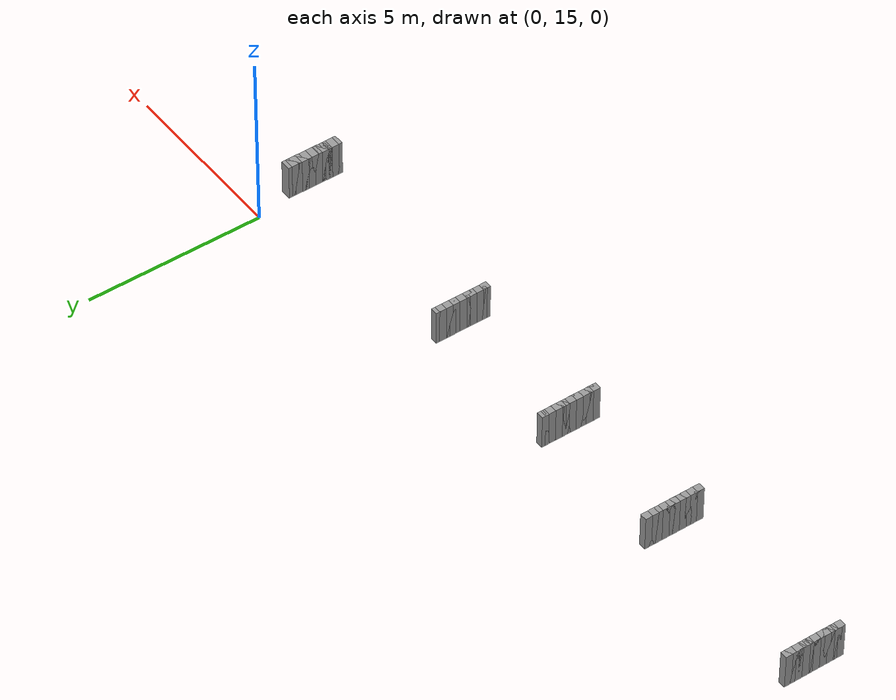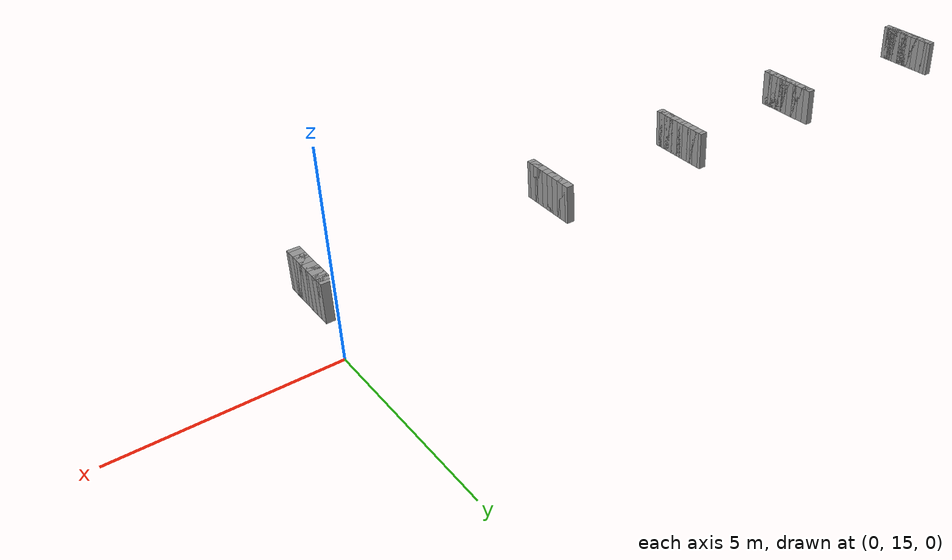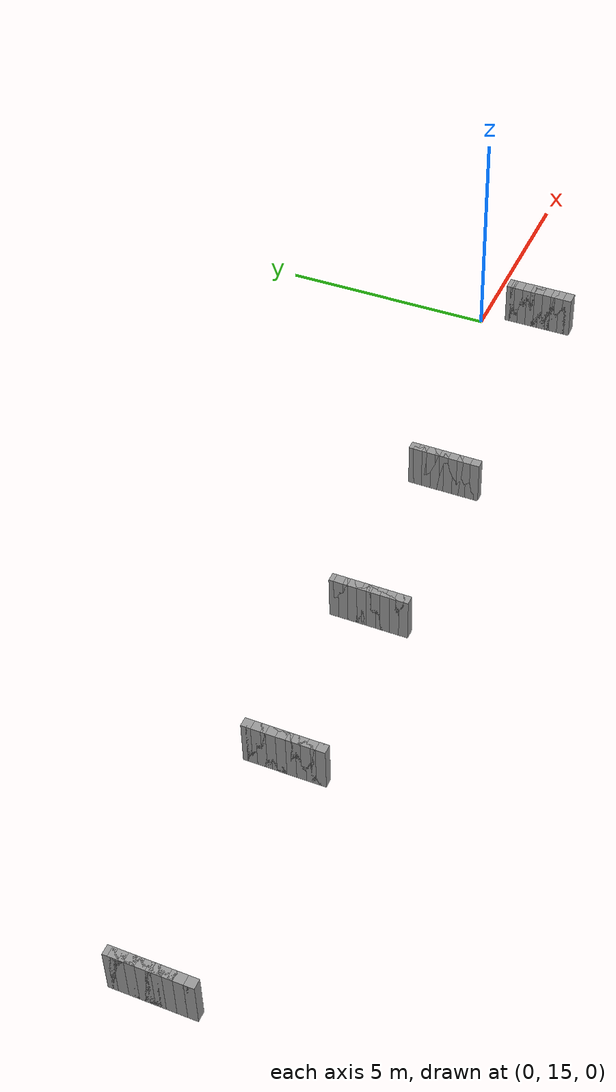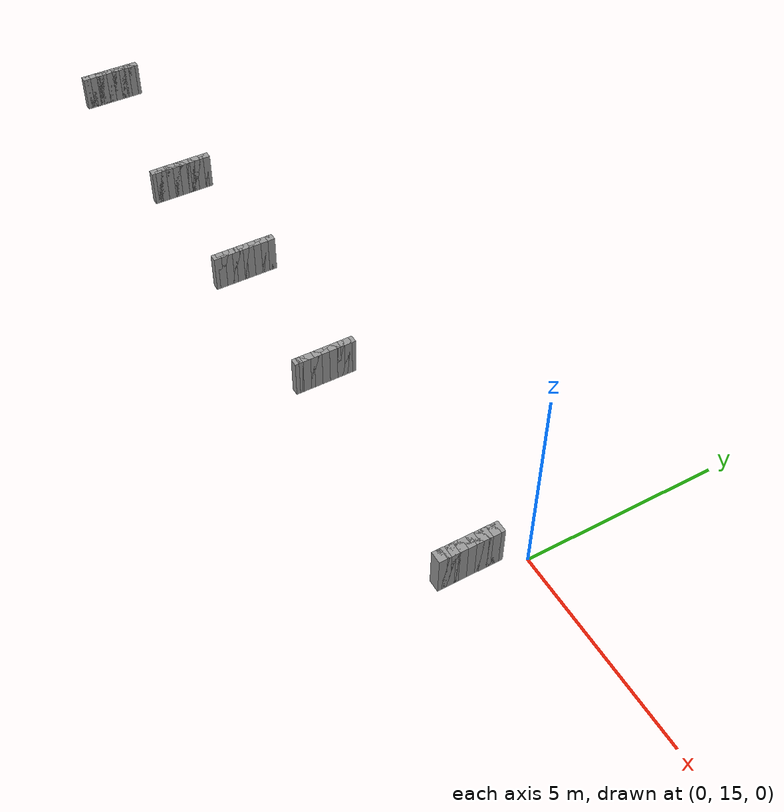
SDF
<sdf version="1.6">
 <world name="GridMap">
  <model name="GridMap">
   <link name="Wall_(106.5,127.0)">
    <collision name="Wall_(106.5,127.0)_Collision">
     <geometry><box><size>0.2 0.2 1.0</size></box></geometry>
     <pose>-10.65 12.7 0.5 0 -0 0</pose>
    </collision>
    <visual name="Wall_(106.5,127.0)_Visual">
     <geometry><box><size>0.2 0.2 1.0</size></box></geometry>
     <pose>-10.65 12.7 0.5 0 -0 0</pose>
     <material>
      <script><uri>file://media/materials/scripts/gazebo.material</uri><name>Gazebo/Grey</name></script>
      <ambient>1 1 1 1</ambient>
     </material>
     <meta><layer>0</layer></meta>
    </visual>
    <pose>0 0 0.5 0 -0 0</pose>
   </link>
   <link name="Wall_(146.5,127.0)">
    <collision name="Wall_(146.5,127.0)_Collision">
     <geometry><box><size>0.2 0.2 1.0</size></box></geometry>
     <pose>-14.65 12.7 0.5 0 -0 0</pose>
    </collision>
    <visual name="Wall_(146.5,127.0)_Visual">
     <geometry><box><size>0.2 0.2 1.0</size></box></geometry>
     <pose>-14.65 12.7 0.5 0 -0 0</pose>
     <material>
      <script><uri>file://media/materials/scripts/gazebo.material</uri><name>Gazebo/Grey</name></script>
      <ambient>1 1 1 1</ambient>
     </material>
     <meta><layer>0</layer></meta>
    </visual>
    <pose>0 0 0.5 0 -0 0</pose>
   </link>
   <link name="Wall_(198.5,127.0)">
    <collision name="Wall_(198.5,127.0)_Collision">
     <geometry><box><size>0.2 0.2 1.0</size></box></geometry>
     <pose>-19.85 12.7 0.5 0 -0 0</pose>
    </collision>
    <visual name="Wall_(198.5,127.0)_Visual">
     <geometry><box><size>0.2 0.2 1.0</size></box></geometry>
     <pose>-19.85 12.7 0.5 0 -0 0</pose>
     <material>
      <script><uri>file://media/materials/scripts/gazebo.material</uri><name>Gazebo/Grey</name></script>
      <ambient>1 1 1 1</ambient>
     </material>
     <meta><layer>0</layer></meta>
    </visual>
    <pose>0 0 0.5 0 -0 0</pose>
   </link>
   <link name="Wall_(1.5,128.0)">
    <collision name="Wall_(1.5,128.0)_Collision">
     <geometry><box><size>0.3 0.2 1.0</size></box></geometry>
     <pose>-0.15 12.8 0.5 0 -0 0</pose>
    </collision>
    <visual name="Wall_(1.5,128.0)_Visual">
     <geometry><box><size>0.3 0.2 1.0</size></box></geometry>
     <pose>-0.15 12.8 0.5 0 -0 0</pose>
     <material>
      <script><uri>file://media/materials/scripts/gazebo.material</uri><name>Gazebo/Grey</name></script>
      <ambient>1 1 1 1</ambient>
     </material>
     <meta><layer>0</layer></meta>
    </visual>
    <pose>0 0 0.5 0 -0 0</pose>
   </link>
   <link name="Wall_(64.0,128.0)">
    <collision name="Wall_(64.0,128.0)_Collision">
     <geometry><box><size>0.2 0.2 1.0</size></box></geometry>
     <pose>-6.4 12.8 0.5 0 -0 0</pose>
    </collision>
    <visual name="Wall_(64.0,128.0)_Visual">
     <geometry><box><size>0.2 0.2 1.0</size></box></geometry>
     <pose>-6.4 12.8 0.5 0 -0 0</pose>
     <material>
      <script><uri>file://media/materials/scripts/gazebo.material</uri><name>Gazebo/Grey</name></script>
      <ambient>1 1 1 1</ambient>
     </material>
     <meta><layer>0</layer></meta>
    </visual>
    <pose>0 0 0.5 0 -0 0</pose>
   </link>
   <link name="Wall_(106.5,128.0)">
    <collision name="Wall_(106.5,128.0)_Collision">
     <geometry><box><size>0.2 0.2 1.0</size></box></geometry>
     <pose>-10.65 12.8 0.5 0 -0 0</pose>
    </collision>
    <visual name="Wall_(106.5,128.0)_Visual">
     <geometry><box><size>0.2 0.2 1.0</size></box></geometry>
     <pose>-10.65 12.8 0.5 0 -0 0</pose>
     <material>
      <script><uri>file://media/materials/scripts/gazebo.material</uri><name>Gazebo/Grey</name></script>
      <ambient>1 1 1 1</ambient>
     </material>
     <meta><layer>0</layer></meta>
    </visual>
    <pose>0 0 0.5 0 -0 0</pose>
   </link>
   <link name="Wall_(146.5,128.0)">
    <collision name="Wall_(146.5,128.0)_Collision">
     <geometry><box><size>0.2 0.2 1.0</size></box></geometry>
     <pose>-14.65 12.8 0.5 0 -0 0</pose>
    </collision>
    <visual name="Wall_(146.5,128.0)_Visual">
     <geometry><box><size>0.2 0.2 1.0</size></box></geometry>
     <pose>-14.65 12.8 0.5 0 -0 0</pose>
     <material>
      <script><uri>file://media/materials/scripts/gazebo.material</uri><name>Gazebo/Grey</name></script>
      <ambient>1 1 1 1</ambient>
     </material>
     <meta><layer>0</layer></meta>
    </visual>
    <pose>0 0 0.5 0 -0 0</pose>
   </link>
   <link name="Wall_(198.5,128.0)">
    <collision name="Wall_(198.5,128.0)_Collision">
     <geometry><box><size>0.2 0.2 1.0</size></box></geometry>
     <pose>-19.85 12.8 0.5 0 -0 0</pose>
    </collision>
    <visual name="Wall_(198.5,128.0)_Visual">
     <geometry><box><size>0.2 0.2 1.0</size></box></geometry>
     <pose>-19.85 12.8 0.5 0 -0 0</pose>
     <material>
      <script><uri>file://media/materials/scripts/gazebo.material</uri><name>Gazebo/Grey</name></script>
      <ambient>1 1 1 1</ambient>
     </material>
     <meta><layer>0</layer></meta>
    </visual>
    <pose>0 0 0.5 0 -0 0</pose>
   </link>
   <link name="Wall_(1.5,129.0)">
    <collision name="Wall_(1.5,129.0)_Collision">
     <geometry><box><size>0.3 0.2 1.0</size></box></geometry>
     <pose>-0.15 12.9 0.5 0 -0 0</pose>
    </collision>
    <visual name="Wall_(1.5,129.0)_Visual">
     <geometry><box><size>0.3 0.2 1.0</size></box></geometry>
     <pose>-0.15 12.9 0.5 0 -0 0</pose>
     <material>
      <script><uri>file://media/materials/scripts/gazebo.material</uri><name>Gazebo/Grey</name></script>
      <ambient>1 1 1 1</ambient>
     </material>
     <meta><layer>0</layer></meta>
    </visual>
    <pose>0 0 0.5 0 -0 0</pose>
   </link>
   <link name="Wall_(64.0,129.0)">
    <collision name="Wall_(64.0,129.0)_Collision">
     <geometry><box><size>0.2 0.2 1.0</size></box></geometry>
     <pose>-6.4 12.9 0.5 0 -0 0</pose>
    </collision>
    <visual name="Wall_(64.0,129.0)_Visual">
     <geometry><box><size>0.2 0.2 1.0</size></box></geometry>
     <pose>-6.4 12.9 0.5 0 -0 0</pose>
     <material>
      <script><uri>file://media/materials/scripts/gazebo.material</uri><name>Gazebo/Grey</name></script>
      <ambient>1 1 1 1</ambient>
     </material>
     <meta><layer>0</layer></meta>
    </visual>
    <pose>0 0 0.5 0 -0 0</pose>
   </link>
   <link name="Wall_(106.5,129.0)">
    <collision name="Wall_(106.5,129.0)_Collision">
     <geometry><box><size>0.2 0.2 1.0</size></box></geometry>
     <pose>-10.65 12.9 0.5 0 -0 0</pose>
    </collision>
    <visual name="Wall_(106.5,129.0)_Visual">
     <geometry><box><size>0.2 0.2 1.0</size></box></geometry>
     <pose>-10.65 12.9 0.5 0 -0 0</pose>
     <material>
      <script><uri>file://media/materials/scripts/gazebo.material</uri><name>Gazebo/Grey</name></script>
      <ambient>1 1 1 1</ambient>
     </material>
     <meta><layer>0</layer></meta>
    </visual>
    <pose>0 0 0.5 0 -0 0</pose>
   </link>
   <link name="Wall_(146.5,129.0)">
    <collision name="Wall_(146.5,129.0)_Collision">
     <geometry><box><size>0.2 0.2 1.0</size></box></geometry>
     <pose>-14.65 12.9 0.5 0 -0 0</pose>
    </collision>
    <visual name="Wall_(146.5,129.0)_Visual">
     <geometry><box><size>0.2 0.2 1.0</size></box></geometry>
     <pose>-14.65 12.9 0.5 0 -0 0</pose>
     <material>
      <script><uri>file://media/materials/scripts/gazebo.material</uri><name>Gazebo/Grey</name></script>
      <ambient>1 1 1 1</ambient>
     </material>
     <meta><layer>0</layer></meta>
    </visual>
    <pose>0 0 0.5 0 -0 0</pose>
   </link>
   <link name="Wall_(198.5,129.0)">
    <collision name="Wall_(198.5,129.0)_Collision">
     <geometry><box><size>0.2 0.2 1.0</size></box></geometry>
     <pose>-19.85 12.9 0.5 0 -0 0</pose>
    </collision>
    <visual name="Wall_(198.5,129.0)_Visual">
     <geometry><box><size>0.2 0.2 1.0</size></box></geometry>
     <pose>-19.85 12.9 0.5 0 -0 0</pose>
     <material>
      <script><uri>file://media/materials/scripts/gazebo.material</uri><name>Gazebo/Grey</name></script>
      <ambient>1 1 1 1</ambient>
     </material>
     <meta><layer>0</layer></meta>
    </visual>
    <pose>0 0 0.5 0 -0 0</pose>
   </link>
   <link name="Wall_(1.5,130.0)">
    <collision name="Wall_(1.5,130.0)_Collision">
     <geometry><box><size>0.3 0.2 1.0</size></box></geometry>
     <pose>-0.15 13.0 0.5 0 -0 0</pose>
    </collision>
    <visual name="Wall_(1.5,130.0)_Visual">
     <geometry><box><size>0.3 0.2 1.0</size></box></geometry>
     <pose>-0.15 13.0 0.5 0 -0 0</pose>
     <material>
      <script><uri>file://media/materials/scripts/gazebo.material</uri><name>Gazebo/Grey</name></script>
      <ambient>1 1 1 1</ambient>
     </material>
     <meta><layer>0</layer></meta>
    </visual>
    <pose>0 0 0.5 0 -0 0</pose>
   </link>
   <link name="Wall_(64.0,130.0)">
    <collision name="Wall_(64.0,130.0)_Collision">
     <geometry><box><size>0.2 0.2 1.0</size></box></geometry>
     <pose>-6.4 13.0 0.5 0 -0 0</pose>
    </collision>
    <visual name="Wall_(64.0,130.0)_Visual">
     <geometry><box><size>0.2 0.2 1.0</size></box></geometry>
     <pose>-6.4 13.0 0.5 0 -0 0</pose>
     <material>
      <script><uri>file://media/materials/scripts/gazebo.material</uri><name>Gazebo/Grey</name></script>
      <ambient>1 1 1 1</ambient>
     </material>
     <meta><layer>0</layer></meta>
    </visual>
    <pose>0 0 0.5 0 -0 0</pose>
   </link>
   <link name="Wall_(106.5,130.0)">
    <collision name="Wall_(106.5,130.0)_Collision">
     <geometry><box><size>0.2 0.2 1.0</size></box></geometry>
     <pose>-10.65 13.0 0.5 0 -0 0</pose>
    </collision>
    <visual name="Wall_(106.5,130.0)_Visual">
     <geometry><box><size>0.2 0.2 1.0</size></box></geometry>
     <pose>-10.65 13.0 0.5 0 -0 0</pose>
     <material>
      <script><uri>file://media/materials/scripts/gazebo.material</uri><name>Gazebo/Grey</name></script>
      <ambient>1 1 1 1</ambient>
     </material>
     <meta><layer>0</layer></meta>
    </visual>
    <pose>0 0 0.5 0 -0 0</pose>
   </link>
   <link name="Wall_(146.5,130.0)">
    <collision name="Wall_(146.5,130.0)_Collision">
     <geometry><box><size>0.2 0.2 1.0</size></box></geometry>
     <pose>-14.65 13.0 0.5 0 -0 0</pose>
    </collision>
    <visual name="Wall_(146.5,130.0)_Visual">
     <geometry><box><size>0.2 0.2 1.0</size></box></geometry>
     <pose>-14.65 13.0 0.5 0 -0 0</pose>
     <material>
      <script><uri>file://media/materials/scripts/gazebo.material</uri><name>Gazebo/Grey</name></script>
      <ambient>1 1 1 1</ambient>
     </material>
     <meta><layer>0</layer></meta>
    </visual>
    <pose>0 0 0.5 0 -0 0</pose>
   </link>
   <link name="Wall_(198.5,130.0)">
    <collision name="Wall_(198.5,130.0)_Collision">
     <geometry><box><size>0.2 0.2 1.0</size></box></geometry>
     <pose>-19.85 13.0 0.5 0 -0 0</pose>
    </collision>
    <visual name="Wall_(198.5,130.0)_Visual">
     <geometry><box><size>0.2 0.2 1.0</size></box></geometry>
     <pose>-19.85 13.0 0.5 0 -0 0</pose>
     <material>
      <script><uri>file://media/materials/scripts/gazebo.material</uri><name>Gazebo/Grey</name></script>
      <ambient>1 1 1 1</ambient>
     </material>
     <meta><layer>0</layer></meta>
    </visual>
    <pose>0 0 0.5 0 -0 0</pose>
   </link>
   <link name="Wall_(1.5,131.0)">
    <collision name="Wall_(1.5,131.0)_Collision">
     <geometry><box><size>0.3 0.2 1.0</size></box></geometry>
     <pose>-0.15 13.1 0.5 0 -0 0</pose>
    </collision>
    <visual name="Wall_(1.5,131.0)_Visual">
     <geometry><box><size>0.3 0.2 1.0</size></box></geometry>
     <pose>-0.15 13.1 0.5 0 -0 0</pose>
     <material>
      <script><uri>file://media/materials/scripts/gazebo.material</uri><name>Gazebo/Grey</name></script>
      <ambient>1 1 1 1</ambient>
     </material>
     <meta><layer>0</layer></meta>
    </visual>
    <pose>0 0 0.5 0 -0 0</pose>
   </link>
   <link name="Wall_(64.0,131.0)">
    <collision name="Wall_(64.0,131.0)_Collision">
     <geometry><box><size>0.2 0.2 1.0</size></box></geometry>
     <pose>-6.4 13.1 0.5 0 -0 0</pose>
    </collision>
    <visual name="Wall_(64.0,131.0)_Visual">
     <geometry><box><size>0.2 0.2 1.0</size></box></geometry>
     <pose>-6.4 13.1 0.5 0 -0 0</pose>
     <material>
      <script><uri>file://media/materials/scripts/gazebo.material</uri><name>Gazebo/Grey</name></script>
      <ambient>1 1 1 1</ambient>
     </material>
     <meta><layer>0</layer></meta>
    </visual>
    <pose>0 0 0.5 0 -0 0</pose>
   </link>
   <link name="Wall_(106.5,131.0)">
    <collision name="Wall_(106.5,131.0)_Collision">
     <geometry><box><size>0.2 0.2 1.0</size></box></geometry>
     <pose>-10.65 13.1 0.5 0 -0 0</pose>
    </collision>
    <visual name="Wall_(106.5,131.0)_Visual">
     <geometry><box><size>0.2 0.2 1.0</size></box></geometry>
     <pose>-10.65 13.1 0.5 0 -0 0</pose>
     <material>
      <script><uri>file://media/materials/scripts/gazebo.material</uri><name>Gazebo/Grey</name></script>
      <ambient>1 1 1 1</ambient>
     </material>
     <meta><layer>0</layer></meta>
    </visual>
    <pose>0 0 0.5 0 -0 0</pose>
   </link>
   <link name="Wall_(146.5,131.0)">
    <collision name="Wall_(146.5,131.0)_Collision">
     <geometry><box><size>0.2 0.2 1.0</size></box></geometry>
     <pose>-14.65 13.1 0.5 0 -0 0</pose>
    </collision>
    <visual name="Wall_(146.5,131.0)_Visual">
     <geometry><box><size>0.2 0.2 1.0</size></box></geometry>
     <pose>-14.65 13.1 0.5 0 -0 0</pose>
     <material>
      <script><uri>file://media/materials/scripts/gazebo.material</uri><name>Gazebo/Grey</name></script>
      <ambient>1 1 1 1</ambient>
     </material>
     <meta><layer>0</layer></meta>
    </visual>
    <pose>0 0 0.5 0 -0 0</pose>
   </link>
   <link name="Wall_(198.5,131.0)">
    <collision name="Wall_(198.5,131.0)_Collision">
     <geometry><box><size>0.2 0.2 1.0</size></box></geometry>
     <pose>-19.85 13.1 0.5 0 -0 0</pose>
    </collision>
    <visual name="Wall_(198.5,131.0)_Visual">
     <geometry><box><size>0.2 0.2 1.0</size></box></geometry>
     <pose>-19.85 13.1 0.5 0 -0 0</pose>
     <material>
      <script><uri>file://media/materials/scripts/gazebo.material</uri><name>Gazebo/Grey</name></script>
      <ambient>1 1 1 1</ambient>
     </material>
     <meta><layer>0</layer></meta>
    </visual>
    <pose>0 0 0.5 0 -0 0</pose>
   </link>
   <link name="Wall_(1.5,132.0)">
    <collision name="Wall_(1.5,132.0)_Collision">
     <geometry><box><size>0.3 0.2 1.0</size></box></geometry>
     <pose>-0.15 13.2 0.5 0 -0 0</pose>
    </collision>
    <visual name="Wall_(1.5,132.0)_Visual">
     <geometry><box><size>0.3 0.2 1.0</size></box></geometry>
     <pose>-0.15 13.2 0.5 0 -0 0</pose>
     <material>
      <script><uri>file://media/materials/scripts/gazebo.material</uri><name>Gazebo/Grey</name></script>
      <ambient>1 1 1 1</ambient>
     </material>
     <meta><layer>0</layer></meta>
    </visual>
    <pose>0 0 0.5 0 -0 0</pose>
   </link>
   <link name="Wall_(64.0,132.0)">
    <collision name="Wall_(64.0,132.0)_Collision">
     <geometry><box><size>0.2 0.2 1.0</size></box></geometry>
     <pose>-6.4 13.2 0.5 0 -0 0</pose>
    </collision>
    <visual name="Wall_(64.0,132.0)_Visual">
     <geometry><box><size>0.2 0.2 1.0</size></box></geometry>
     <pose>-6.4 13.2 0.5 0 -0 0</pose>
     <material>
      <script><uri>file://media/materials/scripts/gazebo.material</uri><name>Gazebo/Grey</name></script>
      <ambient>1 1 1 1</ambient>
     </material>
     <meta><layer>0</layer></meta>
    </visual>
    <pose>0 0 0.5 0 -0 0</pose>
   </link>
   <link name="Wall_(106.5,132.0)">
    <collision name="Wall_(106.5,132.0)_Collision">
     <geometry><box><size>0.2 0.2 1.0</size></box></geometry>
     <pose>-10.65 13.2 0.5 0 -0 0</pose>
    </collision>
    <visual name="Wall_(106.5,132.0)_Visual">
     <geometry><box><size>0.2 0.2 1.0</size></box></geometry>
     <pose>-10.65 13.2 0.5 0 -0 0</pose>
     <material>
      <script><uri>file://media/materials/scripts/gazebo.material</uri><name>Gazebo/Grey</name></script>
      <ambient>1 1 1 1</ambient>
     </material>
     <meta><layer>0</layer></meta>
    </visual>
    <pose>0 0 0.5 0 -0 0</pose>
   </link>
   <link name="Wall_(146.5,132.0)">
    <collision name="Wall_(146.5,132.0)_Collision">
     <geometry><box><size>0.2 0.2 1.0</size></box></geometry>
     <pose>-14.65 13.2 0.5 0 -0 0</pose>
    </collision>
    <visual name="Wall_(146.5,132.0)_Visual">
     <geometry><box><size>0.2 0.2 1.0</size></box></geometry>
     <pose>-14.65 13.2 0.5 0 -0 0</pose>
     <material>
      <script><uri>file://media/materials/scripts/gazebo.material</uri><name>Gazebo/Grey</name></script>
      <ambient>1 1 1 1</ambient>
     </material>
     <meta><layer>0</layer></meta>
    </visual>
    <pose>0 0 0.5 0 -0 0</pose>
   </link>
   <link name="Wall_(198.5,132.0)">
    <collision name="Wall_(198.5,132.0)_Collision">
     <geometry><box><size>0.2 0.2 1.0</size></box></geometry>
     <pose>-19.85 13.2 0.5 0 -0 0</pose>
    </collision>
    <visual name="Wall_(198.5,132.0)_Visual">
     <geometry><box><size>0.2 0.2 1.0</size></box></geometry>
     <pose>-19.85 13.2 0.5 0 -0 0</pose>
     <material>
      <script><uri>file://media/materials/scripts/gazebo.material</uri><name>Gazebo/Grey</name></script>
      <ambient>1 1 1 1</ambient>
     </material>
     <meta><layer>0</layer></meta>
    </visual>
    <pose>0 0 0.5 0 -0 0</pose>
   </link>
   <link name="Wall_(1.5,133.0)">
    <collision name="Wall_(1.5,133.0)_Collision">
     <geometry><box><size>0.3 0.2 1.0</size></box></geometry>
     <pose>-0.15 13.3 0.5 0 -0 0</pose>
    </collision>
    <visual name="Wall_(1.5,133.0)_Visual">
     <geometry><box><size>0.3 0.2 1.0</size></box></geometry>
     <pose>-0.15 13.3 0.5 0 -0 0</pose>
     <material>
      <script><uri>file://media/materials/scripts/gazebo.material</uri><name>Gazebo/Grey</name></script>
      <ambient>1 1 1 1</ambient>
     </material>
     <meta><layer>0</layer></meta>
    </visual>
    <pose>0 0 0.5 0 -0 0</pose>
   </link>
   <link name="Wall_(64.0,133.0)">
    <collision name="Wall_(64.0,133.0)_Collision">
     <geometry><box><size>0.2 0.2 1.0</size></box></geometry>
     <pose>-6.4 13.3 0.5 0 -0 0</pose>
    </collision>
    <visual name="Wall_(64.0,133.0)_Visual">
     <geometry><box><size>0.2 0.2 1.0</size></box></geometry>
     <pose>-6.4 13.3 0.5 0 -0 0</pose>
     <material>
      <script><uri>file://media/materials/scripts/gazebo.material</uri><name>Gazebo/Grey</name></script>
      <ambient>1 1 1 1</ambient>
     </material>
     <meta><layer>0</layer></meta>
    </visual>
    <pose>0 0 0.5 0 -0 0</pose>
   </link>
   <link name="Wall_(106.5,133.0)">
    <collision name="Wall_(106.5,133.0)_Collision">
     <geometry><box><size>0.2 0.2 1.0</size></box></geometry>
     <pose>-10.65 13.3 0.5 0 -0 0</pose>
    </collision>
    <visual name="Wall_(106.5,133.0)_Visual">
     <geometry><box><size>0.2 0.2 1.0</size></box></geometry>
     <pose>-10.65 13.3 0.5 0 -0 0</pose>
     <material>
      <script><uri>file://media/materials/scripts/gazebo.material</uri><name>Gazebo/Grey</name></script>
      <ambient>1 1 1 1</ambient>
     </material>
     <meta><layer>0</layer></meta>
    </visual>
    <pose>0 0 0.5 0 -0 0</pose>
   </link>
   <link name="Wall_(146.5,133.0)">
    <collision name="Wall_(146.5,133.0)_Collision">
     <geometry><box><size>0.2 0.2 1.0</size></box></geometry>
     <pose>-14.65 13.3 0.5 0 -0 0</pose>
    </collision>
    <visual name="Wall_(146.5,133.0)_Visual">
     <geometry><box><size>0.2 0.2 1.0</size></box></geometry>
     <pose>-14.65 13.3 0.5 0 -0 0</pose>
     <material>
      <script><uri>file://media/materials/scripts/gazebo.material</uri><name>Gazebo/Grey</name></script>
      <ambient>1 1 1 1</ambient>
     </material>
     <meta><layer>0</layer></meta>
    </visual>
    <pose>0 0 0.5 0 -0 0</pose>
   </link>
   <link name="Wall_(198.5,133.0)">
    <collision name="Wall_(198.5,133.0)_Collision">
     <geometry><box><size>0.2 0.2 1.0</size></box></geometry>
     <pose>-19.85 13.3 0.5 0 -0 0</pose>
    </collision>
    <visual name="Wall_(198.5,133.0)_Visual">
     <geometry><box><size>0.2 0.2 1.0</size></box></geometry>
     <pose>-19.85 13.3 0.5 0 -0 0</pose>
     <material>
      <script><uri>file://media/materials/scripts/gazebo.material</uri><name>Gazebo/Grey</name></script>
      <ambient>1 1 1 1</ambient>
     </material>
     <meta><layer>0</layer></meta>
    </visual>
    <pose>0 0 0.5 0 -0 0</pose>
   </link>
   <link name="Wall_(1.5,134.0)">
    <collision name="Wall_(1.5,134.0)_Collision">
     <geometry><box><size>0.3 0.2 1.0</size></box></geometry>
     <pose>-0.15 13.4 0.5 0 -0 0</pose>
    </collision>
    <visual name="Wall_(1.5,134.0)_Visual">
     <geometry><box><size>0.3 0.2 1.0</size></box></geometry>
     <pose>-0.15 13.4 0.5 0 -0 0</pose>
     <material>
      <script><uri>file://media/materials/scripts/gazebo.material</uri><name>Gazebo/Grey</name></script>
      <ambient>1 1 1 1</ambient>
     </material>
     <meta><layer>0</layer></meta>
    </visual>
    <pose>0 0 0.5 0 -0 0</pose>
   </link>
   <link name="Wall_(64.0,134.0)">
    <collision name="Wall_(64.0,134.0)_Collision">
     <geometry><box><size>0.2 0.2 1.0</size></box></geometry>
     <pose>-6.4 13.4 0.5 0 -0 0</pose>
    </collision>
    <visual name="Wall_(64.0,134.0)_Visual">
     <geometry><box><size>0.2 0.2 1.0</size></box></geometry>
     <pose>-6.4 13.4 0.5 0 -0 0</pose>
     <material>
      <script><uri>file://media/materials/scripts/gazebo.material</uri><name>Gazebo/Grey</name></script>
      <ambient>1 1 1 1</ambient>
     </material>
     <meta><layer>0</layer></meta>
    </visual>
    <pose>0 0 0.5 0 -0 0</pose>
   </link>
   <link name="Wall_(106.5,134.0)">
    <collision name="Wall_(106.5,134.0)_Collision">
     <geometry><box><size>0.2 0.2 1.0</size></box></geometry>
     <pose>-10.65 13.4 0.5 0 -0 0</pose>
    </collision>
    <visual name="Wall_(106.5,134.0)_Visual">
     <geometry><box><size>0.2 0.2 1.0</size></box></geometry>
     <pose>-10.65 13.4 0.5 0 -0 0</pose>
     <material>
      <script><uri>file://media/materials/scripts/gazebo.material</uri><name>Gazebo/Grey</name></script>
      <ambient>1 1 1 1</ambient>
     </material>
     <meta><layer>0</layer></meta>
    </visual>
    <pose>0 0 0.5 0 -0 0</pose>
   </link>
   <link name="Wall_(146.5,134.0)">
    <collision name="Wall_(146.5,134.0)_Collision">
     <geometry><box><size>0.2 0.2 1.0</size></box></geometry>
     <pose>-14.65 13.4 0.5 0 -0 0</pose>
    </collision>
    <visual name="Wall_(146.5,134.0)_Visual">
     <geometry><box><size>0.2 0.2 1.0</size></box></geometry>
     <pose>-14.65 13.4 0.5 0 -0 0</pose>
     <material>
      <script><uri>file://media/materials/scripts/gazebo.material</uri><name>Gazebo/Grey</name></script>
      <ambient>1 1 1 1</ambient>
     </material>
     <meta><layer>0</layer></meta>
    </visual>
    <pose>0 0 0.5 0 -0 0</pose>
   </link>
   <link name="Wall_(198.5,134.0)">
    <collision name="Wall_(198.5,134.0)_Collision">
     <geometry><box><size>0.2 0.2 1.0</size></box></geometry>
     <pose>-19.85 13.4 0.5 0 -0 0</pose>
    </collision>
    <visual name="Wall_(198.5,134.0)_Visual">
     <geometry><box><size>0.2 0.2 1.0</size></box></geometry>
     <pose>-19.85 13.4 0.5 0 -0 0</pose>
     <material>
      <script><uri>file://media/materials/scripts/gazebo.material</uri><name>Gazebo/Grey</name></script>
      <ambient>1 1 1 1</ambient>
     </material>
     <meta><layer>0</layer></meta>
    </visual>
    <pose>0 0 0.5 0 -0 0</pose>
   </link>
   <link name="Wall_(1.5,135.0)">
    <collision name="Wall_(1.5,135.0)_Collision">
     <geometry><box><size>0.3 0.2 1.0</size></box></geometry>
     <pose>-0.15 13.5 0.5 0 -0 0</pose>
    </collision>
    <visual name="Wall_(1.5,135.0)_Visual">
     <geometry><box><size>0.3 0.2 1.0</size></box></geometry>
     <pose>-0.15 13.5 0.5 0 -0 0</pose>
     <material>
      <script><uri>file://media/materials/scripts/gazebo.material</uri><name>Gazebo/Grey</name></script>
      <ambient>1 1 1 1</ambient>
     </material>
     <meta><layer>0</layer></meta>
    </visual>
    <pose>0 0 0.5 0 -0 0</pose>
   </link>
   <link name="Wall_(64.0,135.0)">
    <collision name="Wall_(64.0,135.0)_Collision">
     <geometry><box><size>0.2 0.2 1.0</size></box></geometry>
     <pose>-6.4 13.5 0.5 0 -0 0</pose>
    </collision>
    <visual name="Wall_(64.0,135.0)_Visual">
     <geometry><box><size>0.2 0.2 1.0</size></box></geometry>
     <pose>-6.4 13.5 0.5 0 -0 0</pose>
     <material>
      <script><uri>file://media/materials/scripts/gazebo.material</uri><name>Gazebo/Grey</name></script>
      <ambient>1 1 1 1</ambient>
     </material>
     <meta><layer>0</layer></meta>
    </visual>
    <pose>0 0 0.5 0 -0 0</pose>
   </link>
   <link name="Wall_(106.5,135.0)">
    <collision name="Wall_(106.5,135.0)_Collision">
     <geometry><box><size>0.2 0.2 1.0</size></box></geometry>
     <pose>-10.65 13.5 0.5 0 -0 0</pose>
    </collision>
    <visual name="Wall_(106.5,135.0)_Visual">
     <geometry><box><size>0.2 0.2 1.0</size></box></geometry>
     <pose>-10.65 13.5 0.5 0 -0 0</pose>
     <material>
      <script><uri>file://media/materials/scripts/gazebo.material</uri><name>Gazebo/Grey</name></script>
      <ambient>1 1 1 1</ambient>
     </material>
     <meta><layer>0</layer></meta>
    </visual>
    <pose>0 0 0.5 0 -0 0</pose>
   </link>
   <link name="Wall_(146.5,135.0)">
    <collision name="Wall_(146.5,135.0)_Collision">
     <geometry><box><size>0.2 0.2 1.0</size></box></geometry>
     <pose>-14.65 13.5 0.5 0 -0 0</pose>
    </collision>
    <visual name="Wall_(146.5,135.0)_Visual">
     <geometry><box><size>0.2 0.2 1.0</size></box></geometry>
     <pose>-14.65 13.5 0.5 0 -0 0</pose>
     <material>
      <script><uri>file://media/materials/scripts/gazebo.material</uri><name>Gazebo/Grey</name></script>
      <ambient>1 1 1 1</ambient>
     </material>
     <meta><layer>0</layer></meta>
    </visual>
    <pose>0 0 0.5 0 -0 0</pose>
   </link>
   <link name="Wall_(198.5,135.0)">
    <collision name="Wall_(198.5,135.0)_Collision">
     <geometry><box><size>0.2 0.2 1.0</size></box></geometry>
     <pose>-19.85 13.5 0.5 0 -0 0</pose>
    </collision>
    <visual name="Wall_(198.5,135.0)_Visual">
     <geometry><box><size>0.2 0.2 1.0</size></box></geometry>
     <pose>-19.85 13.5 0.5 0 -0 0</pose>
     <material>
      <script><uri>file://media/materials/scripts/gazebo.material</uri><name>Gazebo/Grey</name></script>
      <ambient>1 1 1 1</ambient>
     </material>
     <meta><layer>0</layer></meta>
    </visual>
    <pose>0 0 0.5 0 -0 0</pose>
   </link>
   <link name="Wall_(1.5,136.0)">
    <collision name="Wall_(1.5,136.0)_Collision">
     <geometry><box><size>0.3 0.2 1.0</size></box></geometry>
     <pose>-0.15 13.6 0.5 0 -0 0</pose>
    </collision>
    <visual name="Wall_(1.5,136.0)_Visual">
     <geometry><box><size>0.3 0.2 1.0</size></box></geometry>
     <pose>-0.15 13.6 0.5 0 -0 0</pose>
     <material>
      <script><uri>file://media/materials/scripts/gazebo.material</uri><name>Gazebo/Grey</name></script>
      <ambient>1 1 1 1</ambient>
     </material>
     <meta><layer>0</layer></meta>
    </visual>
    <pose>0 0 0.5 0 -0 0</pose>
   </link>
   <link name="Wall_(64.0,136.0)">
    <collision name="Wall_(64.0,136.0)_Collision">
     <geometry><box><size>0.2 0.2 1.0</size></box></geometry>
     <pose>-6.4 13.6 0.5 0 -0 0</pose>
    </collision>
    <visual name="Wall_(64.0,136.0)_Visual">
     <geometry><box><size>0.2 0.2 1.0</size></box></geometry>
     <pose>-6.4 13.6 0.5 0 -0 0</pose>
     <material>
      <script><uri>file://media/materials/scripts/gazebo.material</uri><name>Gazebo/Grey</name></script>
      <ambient>1 1 1 1</ambient>
     </material>
     <meta><layer>0</layer></meta>
    </visual>
    <pose>0 0 0.5 0 -0 0</pose>
   </link>
   <link name="Wall_(106.5,136.0)">
    <collision name="Wall_(106.5,136.0)_Collision">
     <geometry><box><size>0.2 0.2 1.0</size></box></geometry>
     <pose>-10.65 13.6 0.5 0 -0 0</pose>
    </collision>
    <visual name="Wall_(106.5,136.0)_Visual">
     <geometry><box><size>0.2 0.2 1.0</size></box></geometry>
     <pose>-10.65 13.6 0.5 0 -0 0</pose>
     <material>
      <script><uri>file://media/materials/scripts/gazebo.material</uri><name>Gazebo/Grey</name></script>
      <ambient>1 1 1 1</ambient>
     </material>
     <meta><layer>0</layer></meta>
    </visual>
    <pose>0 0 0.5 0 -0 0</pose>
   </link>
   <link name="Wall_(146.5,136.0)">
    <collision name="Wall_(146.5,136.0)_Collision">
     <geometry><box><size>0.2 0.2 1.0</size></box></geometry>
     <pose>-14.65 13.6 0.5 0 -0 0</pose>
    </collision>
    <visual name="Wall_(146.5,136.0)_Visual">
     <geometry><box><size>0.2 0.2 1.0</size></box></geometry>
     <pose>-14.65 13.6 0.5 0 -0 0</pose>
     <material>
      <script><uri>file://media/materials/scripts/gazebo.material</uri><name>Gazebo/Grey</name></script>
      <ambient>1 1 1 1</ambient>
     </material>
     <meta><layer>0</layer></meta>
    </visual>
    <pose>0 0 0.5 0 -0 0</pose>
   </link>
   <link name="Wall_(198.5,136.0)">
    <collision name="Wall_(198.5,136.0)_Collision">
     <geometry><box><size>0.2 0.2 1.0</size></box></geometry>
     <pose>-19.85 13.6 0.5 0 -0 0</pose>
    </collision>
    <visual name="Wall_(198.5,136.0)_Visual">
     <geometry><box><size>0.2 0.2 1.0</size></box></geometry>
     <pose>-19.85 13.6 0.5 0 -0 0</pose>
     <material>
      <script><uri>file://media/materials/scripts/gazebo.material</uri><name>Gazebo/Grey</name></script>
      <ambient>1 1 1 1</ambient>
     </material>
     <meta><layer>0</layer></meta>
    </visual>
    <pose>0 0 0.5 0 -0 0</pose>
   </link>
   <link name="Wall_(1.5,137.0)">
    <collision name="Wall_(1.5,137.0)_Collision">
     <geometry><box><size>0.3 0.2 1.0</size></box></geometry>
     <pose>-0.15 13.7 0.5 0 -0 0</pose>
    </collision>
    <visual name="Wall_(1.5,137.0)_Visual">
     <geometry><box><size>0.3 0.2 1.0</size></box></geometry>
     <pose>-0.15 13.7 0.5 0 -0 0</pose>
     <material>
      <script><uri>file://media/materials/scripts/gazebo.material</uri><name>Gazebo/Grey</name></script>
      <ambient>1 1 1 1</ambient>
     </material>
     <meta><layer>0</layer></meta>
    </visual>
    <pose>0 0 0.5 0 -0 0</pose>
   </link>
   <link name="Wall_(64.0,137.0)">
    <collision name="Wall_(64.0,137.0)_Collision">
     <geometry><box><size>0.2 0.2 1.0</size></box></geometry>
     <pose>-6.4 13.7 0.5 0 -0 0</pose>
    </collision>
    <visual name="Wall_(64.0,137.0)_Visual">
     <geometry><box><size>0.2 0.2 1.0</size></box></geometry>
     <pose>-6.4 13.7 0.5 0 -0 0</pose>
     <material>
      <script><uri>file://media/materials/scripts/gazebo.material</uri><name>Gazebo/Grey</name></script>
      <ambient>1 1 1 1</ambient>
     </material>
     <meta><layer>0</layer></meta>
    </visual>
    <pose>0 0 0.5 0 -0 0</pose>
   </link>
   <link name="Wall_(106.5,137.0)">
    <collision name="Wall_(106.5,137.0)_Collision">
     <geometry><box><size>0.2 0.2 1.0</size></box></geometry>
     <pose>-10.65 13.7 0.5 0 -0 0</pose>
    </collision>
    <visual name="Wall_(106.5,137.0)_Visual">
     <geometry><box><size>0.2 0.2 1.0</size></box></geometry>
     <pose>-10.65 13.7 0.5 0 -0 0</pose>
     <material>
      <script><uri>file://media/materials/scripts/gazebo.material</uri><name>Gazebo/Grey</name></script>
      <ambient>1 1 1 1</ambient>
     </material>
     <meta><layer>0</layer></meta>
    </visual>
    <pose>0 0 0.5 0 -0 0</pose>
   </link>
   <link name="Wall_(146.5,137.0)">
    <collision name="Wall_(146.5,137.0)_Collision">
     <geometry><box><size>0.2 0.2 1.0</size></box></geometry>
     <pose>-14.65 13.7 0.5 0 -0 0</pose>
    </collision>
    <visual name="Wall_(146.5,137.0)_Visual">
     <geometry><box><size>0.2 0.2 1.0</size></box></geometry>
     <pose>-14.65 13.7 0.5 0 -0 0</pose>
     <material>
      <script><uri>file://media/materials/scripts/gazebo.material</uri><name>Gazebo/Grey</name></script>
      <ambient>1 1 1 1</ambient>
     </material>
     <meta><layer>0</layer></meta>
    </visual>
    <pose>0 0 0.5 0 -0 0</pose>
   </link>
   <link name="Wall_(198.5,137.0)">
    <collision name="Wall_(198.5,137.0)_Collision">
     <geometry><box><size>0.2 0.2 1.0</size></box></geometry>
     <pose>-19.85 13.7 0.5 0 -0 0</pose>
    </collision>
    <visual name="Wall_(198.5,137.0)_Visual">
     <geometry><box><size>0.2 0.2 1.0</size></box></geometry>
     <pose>-19.85 13.7 0.5 0 -0 0</pose>
     <material>
      <script><uri>file://media/materials/scripts/gazebo.material</uri><name>Gazebo/Grey</name></script>
      <ambient>1 1 1 1</ambient>
     </material>
     <meta><layer>0</layer></meta>
    </visual>
    <pose>0 0 0.5 0 -0 0</pose>
   </link>
   <link name="Wall_(1.5,138.0)">
    <collision name="Wall_(1.5,138.0)_Collision">
     <geometry><box><size>0.3 0.2 1.0</size></box></geometry>
     <pose>-0.15 13.8 0.5 0 -0 0</pose>
    </collision>
    <visual name="Wall_(1.5,138.0)_Visual">
     <geometry><box><size>0.3 0.2 1.0</size></box></geometry>
     <pose>-0.15 13.8 0.5 0 -0 0</pose>
     <material>
      <script><uri>file://media/materials/scripts/gazebo.material</uri><name>Gazebo/Grey</name></script>
      <ambient>1 1 1 1</ambient>
     </material>
     <meta><layer>0</layer></meta>
    </visual>
    <pose>0 0 0.5 0 -0 0</pose>
   </link>
   <link name="Wall_(64.0,138.0)">
    <collision name="Wall_(64.0,138.0)_Collision">
     <geometry><box><size>0.2 0.2 1.0</size></box></geometry>
     <pose>-6.4 13.8 0.5 0 -0 0</pose>
    </collision>
    <visual name="Wall_(64.0,138.0)_Visual">
     <geometry><box><size>0.2 0.2 1.0</size></box></geometry>
     <pose>-6.4 13.8 0.5 0 -0 0</pose>
     <material>
      <script><uri>file://media/materials/scripts/gazebo.material</uri><name>Gazebo/Grey</name></script>
      <ambient>1 1 1 1</ambient>
     </material>
     <meta><layer>0</layer></meta>
    </visual>
    <pose>0 0 0.5 0 -0 0</pose>
   </link>
   <link name="Wall_(106.5,138.0)">
    <collision name="Wall_(106.5,138.0)_Collision">
     <geometry><box><size>0.2 0.2 1.0</size></box></geometry>
     <pose>-10.65 13.8 0.5 0 -0 0</pose>
    </collision>
    <visual name="Wall_(106.5,138.0)_Visual">
     <geometry><box><size>0.2 0.2 1.0</size></box></geometry>
     <pose>-10.65 13.8 0.5 0 -0 0</pose>
     <material>
      <script><uri>file://media/materials/scripts/gazebo.material</uri><name>Gazebo/Grey</name></script>
      <ambient>1 1 1 1</ambient>
     </material>
     <meta><layer>0</layer></meta>
    </visual>
    <pose>0 0 0.5 0 -0 0</pose>
   </link>
   <link name="Wall_(146.5,138.0)">
    <collision name="Wall_(146.5,138.0)_Collision">
     <geometry><box><size>0.2 0.2 1.0</size></box></geometry>
     <pose>-14.65 13.8 0.5 0 -0 0</pose>
    </collision>
    <visual name="Wall_(146.5,138.0)_Visual">
     <geometry><box><size>0.2 0.2 1.0</size></box></geometry>
     <pose>-14.65 13.8 0.5 0 -0 0</pose>
     <material>
      <script><uri>file://media/materials/scripts/gazebo.material</uri><name>Gazebo/Grey</name></script>
      <ambient>1 1 1 1</ambient>
     </material>
     <meta><layer>0</layer></meta>
    </visual>
    <pose>0 0 0.5 0 -0 0</pose>
   </link>
   <link name="Wall_(198.5,138.0)">
    <collision name="Wall_(198.5,138.0)_Collision">
     <geometry><box><size>0.2 0.2 1.0</size></box></geometry>
     <pose>-19.85 13.8 0.5 0 -0 0</pose>
    </collision>
    <visual name="Wall_(198.5,138.0)_Visual">
     <geometry><box><size>0.2 0.2 1.0</size></box></geometry>
     <pose>-19.85 13.8 0.5 0 -0 0</pose>
     <material>
      <script><uri>file://media/materials/scripts/gazebo.material</uri><name>Gazebo/Grey</name></script>
      <ambient>1 1 1 1</ambient>
     </material>
     <meta><layer>0</layer></meta>
    </visual>
    <pose>0 0 0.5 0 -0 0</pose>
   </link>
   <link name="Wall_(1.5,139.0)">
    <collision name="Wall_(1.5,139.0)_Collision">
     <geometry><box><size>0.3 0.2 1.0</size></box></geometry>
     <pose>-0.15 13.9 0.5 0 -0 0</pose>
    </collision>
    <visual name="Wall_(1.5,139.0)_Visual">
     <geometry><box><size>0.3 0.2 1.0</size></box></geometry>
     <pose>-0.15 13.9 0.5 0 -0 0</pose>
     <material>
      <script><uri>file://media/materials/scripts/gazebo.material</uri><name>Gazebo/Grey</name></script>
      <ambient>1 1 1 1</ambient>
     </material>
     <meta><layer>0</layer></meta>
    </visual>
    <pose>0 0 0.5 0 -0 0</pose>
   </link>
   <link name="Wall_(64.0,139.0)">
    <collision name="Wall_(64.0,139.0)_Collision">
     <geometry><box><size>0.2 0.2 1.0</size></box></geometry>
     <pose>-6.4 13.9 0.5 0 -0 0</pose>
    </collision>
    <visual name="Wall_(64.0,139.0)_Visual">
     <geometry><box><size>0.2 0.2 1.0</size></box></geometry>
     <pose>-6.4 13.9 0.5 0 -0 0</pose>
     <material>
      <script><uri>file://media/materials/scripts/gazebo.material</uri><name>Gazebo/Grey</name></script>
      <ambient>1 1 1 1</ambient>
     </material>
     <meta><layer>0</layer></meta>
    </visual>
    <pose>0 0 0.5 0 -0 0</pose>
   </link>
   <link name="Wall_(106.5,139.0)">
    <collision name="Wall_(106.5,139.0)_Collision">
     <geometry><box><size>0.2 0.2 1.0</size></box></geometry>
     <pose>-10.65 13.9 0.5 0 -0 0</pose>
    </collision>
    <visual name="Wall_(106.5,139.0)_Visual">
     <geometry><box><size>0.2 0.2 1.0</size></box></geometry>
     <pose>-10.65 13.9 0.5 0 -0 0</pose>
     <material>
      <script><uri>file://media/materials/scripts/gazebo.material</uri><name>Gazebo/Grey</name></script>
      <ambient>1 1 1 1</ambient>
     </material>
     <meta><layer>0</layer></meta>
    </visual>
    <pose>0 0 0.5 0 -0 0</pose>
   </link>
   <link name="Wall_(146.5,139.0)">
    <collision name="Wall_(146.5,139.0)_Collision">
     <geometry><box><size>0.2 0.2 1.0</size></box></geometry>
     <pose>-14.65 13.9 0.5 0 -0 0</pose>
    </collision>
    <visual name="Wall_(146.5,139.0)_Visual">
     <geometry><box><size>0.2 0.2 1.0</size></box></geometry>
     <pose>-14.65 13.9 0.5 0 -0 0</pose>
     <material>
      <script><uri>file://media/materials/scripts/gazebo.material</uri><name>Gazebo/Grey</name></script>
      <ambient>1 1 1 1</ambient>
     </material>
     <meta><layer>0</layer></meta>
    </visual>
    <pose>0 0 0.5 0 -0 0</pose>
   </link>
   <link name="Wall_(198.5,139.0)">
    <collision name="Wall_(198.5,139.0)_Collision">
     <geometry><box><size>0.2 0.2 1.0</size></box></geometry>
     <pose>-19.85 13.9 0.5 0 -0 0</pose>
    </collision>
    <visual name="Wall_(198.5,139.0)_Visual">
     <geometry><box><size>0.2 0.2 1.0</size></box></geometry>
     <pose>-19.85 13.9 0.5 0 -0 0</pose>
     <material>
      <script><uri>file://media/materials/scripts/gazebo.material</uri><name>Gazebo/Grey</name></script>
      <ambient>1 1 1 1</ambient>
     </material>
     <meta><layer>0</layer></meta>
    </visual>
    <pose>0 0 0.5 0 -0 0</pose>
   </link>
   <link name="Wall_(1.5,140.0)">
    <collision name="Wall_(1.5,140.0)_Collision">
     <geometry><box><size>0.3 0.2 1.0</size></box></geometry>
     <pose>-0.15 14.0 0.5 0 -0 0</pose>
    </collision>
    <visual name="Wall_(1.5,140.0)_Visual">
     <geometry><box><size>0.3 0.2 1.0</size></box></geometry>
     <pose>-0.15 14.0 0.5 0 -0 0</pose>
     <material>
      <script><uri>file://media/materials/scripts/gazebo.material</uri><name>Gazebo/Grey</name></script>
      <ambient>1 1 1 1</ambient>
     </material>
     <meta><layer>0</layer></meta>
    </visual>
    <pose>0 0 0.5 0 -0 0</pose>
   </link>
   <link name="Wall_(64.0,140.0)">
    <collision name="Wall_(64.0,140.0)_Collision">
     <geometry><box><size>0.2 0.2 1.0</size></box></geometry>
     <pose>-6.4 14.0 0.5 0 -0 0</pose>
    </collision>
    <visual name="Wall_(64.0,140.0)_Visual">
     <geometry><box><size>0.2 0.2 1.0</size></box></geometry>
     <pose>-6.4 14.0 0.5 0 -0 0</pose>
     <material>
      <script><uri>file://media/materials/scripts/gazebo.material</uri><name>Gazebo/Grey</name></script>
      <ambient>1 1 1 1</ambient>
     </material>
     <meta><layer>0</layer></meta>
    </visual>
    <pose>0 0 0.5 0 -0 0</pose>
   </link>
   <link name="Wall_(106.5,140.0)">
    <collision name="Wall_(106.5,140.0)_Collision">
     <geometry><box><size>0.2 0.2 1.0</size></box></geometry>
     <pose>-10.65 14.0 0.5 0 -0 0</pose>
    </collision>
    <visual name="Wall_(106.5,140.0)_Visual">
     <geometry><box><size>0.2 0.2 1.0</size></box></geometry>
     <pose>-10.65 14.0 0.5 0 -0 0</pose>
     <material>
      <script><uri>file://media/materials/scripts/gazebo.material</uri><name>Gazebo/Grey</name></script>
      <ambient>1 1 1 1</ambient>
     </material>
     <meta><layer>0</layer></meta>
    </visual>
    <pose>0 0 0.5 0 -0 0</pose>
   </link>
   <link name="Wall_(146.5,140.0)">
    <collision name="Wall_(146.5,140.0)_Collision">
     <geometry><box><size>0.2 0.2 1.0</size></box></geometry>
     <pose>-14.65 14.0 0.5 0 -0 0</pose>
    </collision>
    <visual name="Wall_(146.5,140.0)_Visual">
     <geometry><box><size>0.2 0.2 1.0</size></box></geometry>
     <pose>-14.65 14.0 0.5 0 -0 0</pose>
     <material>
      <script><uri>file://media/materials/scripts/gazebo.material</uri><name>Gazebo/Grey</name></script>
      <ambient>1 1 1 1</ambient>
     </material>
     <meta><layer>0</layer></meta>
    </visual>
    <pose>0 0 0.5 0 -0 0</pose>
   </link>
   <link name="Wall_(198.5,140.0)">
    <collision name="Wall_(198.5,140.0)_Collision">
     <geometry><box><size>0.2 0.2 1.0</size></box></geometry>
     <pose>-19.85 14.0 0.5 0 -0 0</pose>
    </collision>
    <visual name="Wall_(198.5,140.0)_Visual">
     <geometry><box><size>0.2 0.2 1.0</size></box></geometry>
     <pose>-19.85 14.0 0.5 0 -0 0</pose>
     <material>
      <script><uri>file://media/materials/scripts/gazebo.material</uri><name>Gazebo/Grey</name></script>
      <ambient>1 1 1 1</ambient>
     </material>
     <meta><layer>0</layer></meta>
    </visual>
    <pose>0 0 0.5 0 -0 0</pose>
   </link>
   <link name="Wall_(1.5,141.0)">
    <collision name="Wall_(1.5,141.0)_Collision">
     <geometry><box><size>0.3 0.2 1.0</size></box></geometry>
     <pose>-0.15 14.1 0.5 0 -0 0</pose>
    </collision>
    <visual name="Wall_(1.5,141.0)_Visual">
     <geometry><box><size>0.3 0.2 1.0</size></box></geometry>
     <pose>-0.15 14.1 0.5 0 -0 0</pose>
     <material>
      <script><uri>file://media/materials/scripts/gazebo.material</uri><name>Gazebo/Grey</name></script>
      <ambient>1 1 1 1</ambient>
     </material>
     <meta><layer>0</layer></meta>
    </visual>
    <pose>0 0 0.5 0 -0 0</pose>
   </link>
   <link name="Wall_(64.0,141.0)">
    <collision name="Wall_(64.0,141.0)_Collision">
     <geometry><box><size>0.2 0.2 1.0</size></box></geometry>
     <pose>-6.4 14.1 0.5 0 -0 0</pose>
    </collision>
    <visual name="Wall_(64.0,141.0)_Visual">
     <geometry><box><size>0.2 0.2 1.0</size></box></geometry>
     <pose>-6.4 14.1 0.5 0 -0 0</pose>
     <material>
      <script><uri>file://media/materials/scripts/gazebo.material</uri><name>Gazebo/Grey</name></script>
      <ambient>1 1 1 1</ambient>
     </material>
     <meta><layer>0</layer></meta>
    </visual>
    <pose>0 0 0.5 0 -0 0</pose>
   </link>
   <link name="Wall_(106.5,141.0)">
    <collision name="Wall_(106.5,141.0)_Collision">
     <geometry><box><size>0.2 0.2 1.0</size></box></geometry>
     <pose>-10.65 14.1 0.5 0 -0 0</pose>
    </collision>
    <visual name="Wall_(106.5,141.0)_Visual">
     <geometry><box><size>0.2 0.2 1.0</size></box></geometry>
     <pose>-10.65 14.1 0.5 0 -0 0</pose>
     <material>
      <script><uri>file://media/materials/scripts/gazebo.material</uri><name>Gazebo/Grey</name></script>
      <ambient>1 1 1 1</ambient>
     </material>
     <meta><layer>0</layer></meta>
    </visual>
    <pose>0 0 0.5 0 -0 0</pose>
   </link>
   <link name="Wall_(146.5,141.0)">
    <collision name="Wall_(146.5,141.0)_Collision">
     <geometry><box><size>0.2 0.2 1.0</size></box></geometry>
     <pose>-14.65 14.1 0.5 0 -0 0</pose>
    </collision>
    <visual name="Wall_(146.5,141.0)_Visual">
     <geometry><box><size>0.2 0.2 1.0</size></box></geometry>
     <pose>-14.65 14.1 0.5 0 -0 0</pose>
     <material>
      <script><uri>file://media/materials/scripts/gazebo.material</uri><name>Gazebo/Grey</name></script>
      <ambient>1 1 1 1</ambient>
     </material>
     <meta><layer>0</layer></meta>
    </visual>
    <pose>0 0 0.5 0 -0 0</pose>
   </link>
   <link name="Wall_(198.5,141.0)">
    <collision name="Wall_(198.5,141.0)_Collision">
     <geometry><box><size>0.2 0.2 1.0</size></box></geometry>
     <pose>-19.85 14.1 0.5 0 -0 0</pose>
    </collision>
    <visual name="Wall_(198.5,141.0)_Visual">
     <geometry><box><size>0.2 0.2 1.0</size></box></geometry>
     <pose>-19.85 14.1 0.5 0 -0 0</pose>
     <material>
      <script><uri>file://media/materials/scripts/gazebo.material</uri><name>Gazebo/Grey</name></script>
      <ambient>1 1 1 1</ambient>
     </material>
     <meta><layer>0</layer></meta>
    </visual>
    <pose>0 0 0.5 0 -0 0</pose>
   </link>
   <link name="Wall_(1.5,142.0)">
    <collision name="Wall_(1.5,142.0)_Collision">
     <geometry><box><size>0.3 0.2 1.0</size></box></geometry>
     <pose>-0.15 14.2 0.5 0 -0 0</pose>
    </collision>
    <visual name="Wall_(1.5,142.0)_Visual">
     <geometry><box><size>0.3 0.2 1.0</size></box></geometry>
     <pose>-0.15 14.2 0.5 0 -0 0</pose>
     <material>
      <script><uri>file://media/materials/scripts/gazebo.material</uri><name>Gazebo/Grey</name></script>
      <ambient>1 1 1 1</ambient>
     </material>
     <meta><layer>0</layer></meta>
    </visual>
    <pose>0 0 0.5 0 -0 0</pose>
   </link>
   <link name="Wall_(64.0,142.0)">
    <collision name="Wall_(64.0,142.0)_Collision">
     <geometry><box><size>0.2 0.2 1.0</size></box></geometry>
     <pose>-6.4 14.2 0.5 0 -0 0</pose>
    </collision>
    <visual name="Wall_(64.0,142.0)_Visual">
     <geometry><box><size>0.2 0.2 1.0</size></box></geometry>
     <pose>-6.4 14.2 0.5 0 -0 0</pose>
     <material>
      <script><uri>file://media/materials/scripts/gazebo.material</uri><name>Gazebo/Grey</name></script>
      <ambient>1 1 1 1</ambient>
     </material>
     <meta><layer>0</layer></meta>
    </visual>
    <pose>0 0 0.5 0 -0 0</pose>
   </link>
   <link name="Wall_(106.5,142.0)">
    <collision name="Wall_(106.5,142.0)_Collision">
     <geometry><box><size>0.2 0.2 1.0</size></box></geometry>
     <pose>-10.65 14.2 0.5 0 -0 0</pose>
    </collision>
    <visual name="Wall_(106.5,142.0)_Visual">
     <geometry><box><size>0.2 0.2 1.0</size></box></geometry>
     <pose>-10.65 14.2 0.5 0 -0 0</pose>
     <material>
      <script><uri>file://media/materials/scripts/gazebo.material</uri><name>Gazebo/Grey</name></script>
      <ambient>1 1 1 1</ambient>
     </material>
     <meta><layer>0</layer></meta>
    </visual>
    <pose>0 0 0.5 0 -0 0</pose>
   </link>
   <link name="Wall_(146.5,142.0)">
    <collision name="Wall_(146.5,142.0)_Collision">
     <geometry><box><size>0.2 0.2 1.0</size></box></geometry>
     <pose>-14.65 14.2 0.5 0 -0 0</pose>
    </collision>
    <visual name="Wall_(146.5,142.0)_Visual">
     <geometry><box><size>0.2 0.2 1.0</size></box></geometry>
     <pose>-14.65 14.2 0.5 0 -0 0</pose>
     <material>
      <script><uri>file://media/materials/scripts/gazebo.material</uri><name>Gazebo/Grey</name></script>
      <ambient>1 1 1 1</ambient>
     </material>
     <meta><layer>0</layer></meta>
    </visual>
    <pose>0 0 0.5 0 -0 0</pose>
   </link>
   <link name="Wall_(198.5,142.0)">
    <collision name="Wall_(198.5,142.0)_Collision">
     <geometry><box><size>0.2 0.2 1.0</size></box></geometry>
     <pose>-19.85 14.2 0.5 0 -0 0</pose>
    </collision>
    <visual name="Wall_(198.5,142.0)_Visual">
     <geometry><box><size>0.2 0.2 1.0</size></box></geometry>
     <pose>-19.85 14.2 0.5 0 -0 0</pose>
     <material>
      <script><uri>file://media/materials/scripts/gazebo.material</uri><name>Gazebo/Grey</name></script>
      <ambient>1 1 1 1</ambient>
     </material>
     <meta><layer>0</layer></meta>
    </visual>
    <pose>0 0 0.5 0 -0 0</pose>
   </link>
   <static>1</static>
  </model>
 </world>
</sdf>
